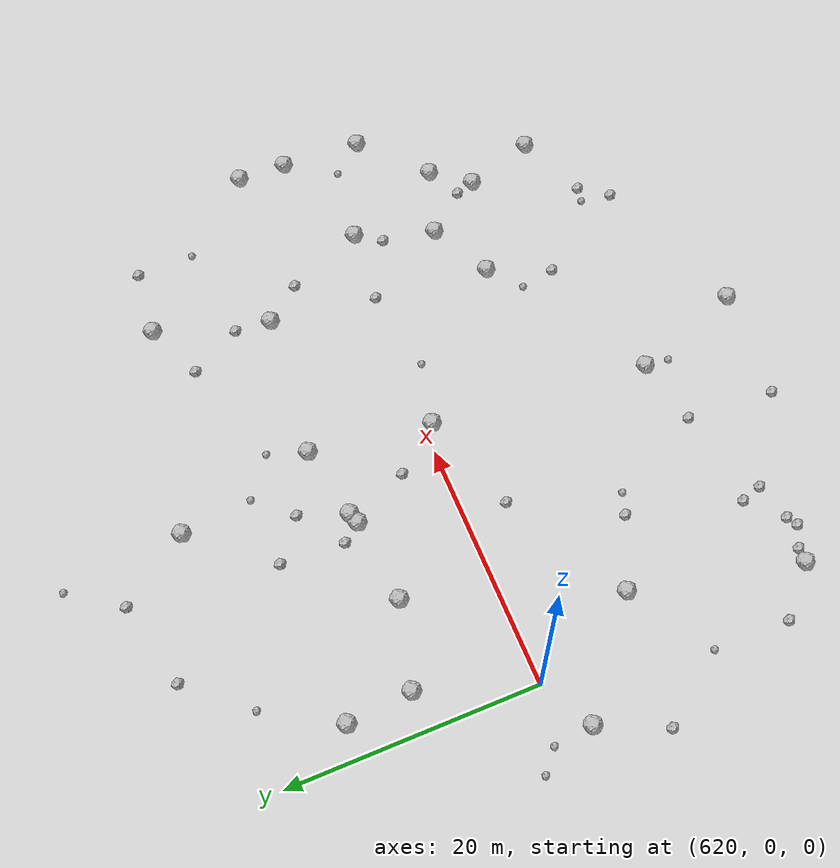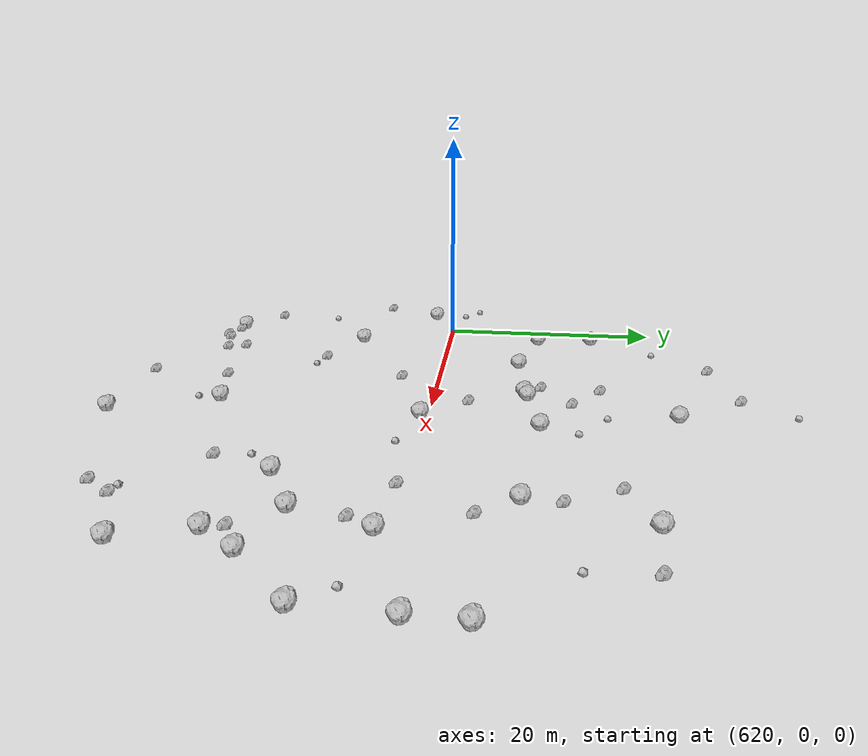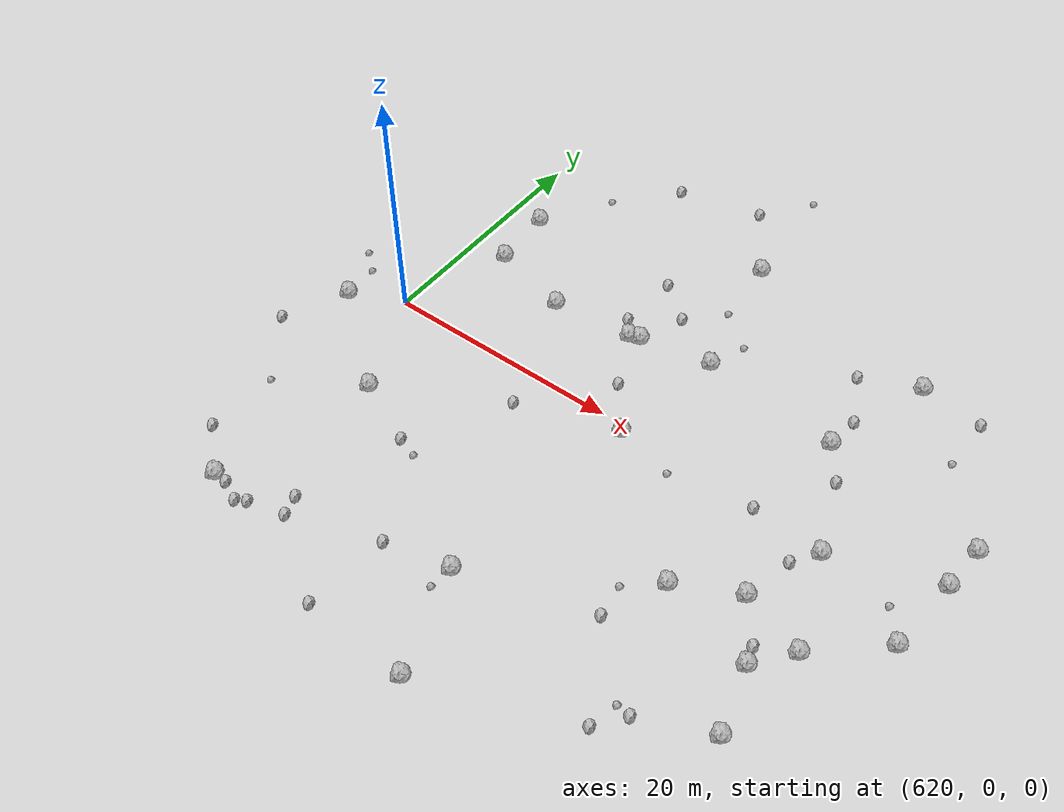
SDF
<sdf version="1.6">
 <world name="default">
  <include><uri>model://sun</uri></include>
  <model name="rock1_16_3">
   <include><uri>model://rock1</uri><pose>623.1364648667761 8.868870119604928 0.5 0 0 0</pose></include>
  </model>
  <model name="rock1_16_4">
   <include><uri>model://rock1</uri><pose>653.1607430633203 -9.998257468310662 0.5 0 0 0</pose></include>
  </model>
  <model name="rock1_16_5">
   <include><uri>model://rock1</uri><pose>655.4844730723232 7.752170232379193 0.5 0 0 0</pose></include>
  </model>
  <model name="rock1_16_6">
   <include><uri>model://rock1</uri><pose>620.887110810057 -22.011574316721973 0.5 0 0 0</pose></include>
  </model>
  <model name="rock1_16_7">
   <include><uri>model://rock1</uri><pose>663.5100605602838 -9.30149738313893 0.5 0 0 0</pose></include>
  </model>
  <model name="rock1_16_8">
   <include><uri>model://rock1</uri><pose>637.6869257002869 7.974745074536088 0.5 0 0 0</pose></include>
  </model>
  <model name="rock1_16_9">
   <include><uri>model://rock1</uri><pose>668.8802122784133 1.5959710025217575 0.5 0 0 0</pose></include>
  </model>
  <model name="rock1_16_10">
   <include><uri>model://rock1</uri><pose>643.3737983387027 -26.80811255486581 0.5 0 0 0</pose></include>
  </model>
  <model name="rock1_16_11">
   <include><uri>model://rock1</uri><pose>640.3454807122216 -18.10771555527479 0.5 0 0 0</pose></include>
  </model>
  <model name="rock1_16_12">
   <include><uri>model://rock1</uri><pose>641.0633335639395 20.22936420175033 0.5 0 0 0</pose></include>
  </model>
  <model name="rock1_16_13">
   <include><uri>model://rock1</uri><pose>661.2403832146983 -12.21386381640492 0.5 0 0 0</pose></include>
  </model>
  <model name="rock1_16_14">
   <include><uri>model://rock1</uri><pose>642.2457046935793 -0.6920732607810329 0.5 0 0 0</pose></include>
  </model>
  <model name="rock1_16_15">
   <include><uri>model://rock1</uri><pose>660.2926701946934 -1.3345683877439498 0.5 0 0 0</pose></include>
  </model>
  <model name="rock1_16_16">
   <include><uri>model://rock1</uri><pose>662.9056764620101 -17.734613702822024 0.5 0 0 0</pose></include>
  </model>
  <model name="rock1_16_17">
   <include><uri>model://rock1</uri><pose>669.0283452730822 5.472510108427429 0.5 0 0 0</pose></include>
  </model>
  <model name="rock1_16_18">
   <include><uri>model://rock1</uri><pose>658.1052052865219 -7.522040729087934 0.5 0 0 0</pose></include>
  </model>
  <model name="rock1_16_19">
   <include><uri>model://rock1</uri><pose>668.4967118377624 -4.778880422197847 0.5 0 0 0</pose></include>
  </model>
  <model name="rock1_16_20">
   <include><uri>model://rock1</uri><pose>658.2296598252348 16.71942146712552 0.5 0 0 0</pose></include>
  </model>
  <model name="rock1_16_21">
   <include><uri>model://rock1</uri><pose>643.678679067399 9.054250098260553 0.5 0 0 0</pose></include>
  </model>
  <model name="rock1_16_22">
   <include><uri>model://rock1</uri><pose>622.6987391453076 14.077202539816 0.5 0 0 0</pose></include>
  </model>
  <model name="rock1_16_23">
   <include><uri>model://rock1</uri><pose>615.781720908671 -2.1363731213845547 0.5 0 0 0</pose></include>
  </model>
  <model name="rock1_16_24">
   <include><uri>model://rock1</uri><pose>636.7836058731606 7.676815855418106 0.5 0 0 0</pose></include>
  </model>
  <model name="rock1_16_25">
   <include><uri>model://rock1</uri><pose>623.9877854639246 -8.720757104129401 0.5 0 0 0</pose></include>
  </model>
  <model name="rock1_16_26">
   <include><uri>model://rock1</uri><pose>629.9381833538798 7.076558386663287 0.5 0 0 0</pose></include>
  </model>
  <model name="rock2_16_0">
   <include><uri>model://rock2</uri><pose>639.1961391352072 3.048388527997659 0.3 0 0 0</pose></include>
  </model>
  <model name="rock2_16_1">
   <include><uri>model://rock2</uri><pose>637.1778744128683 25.896326152251163 0.3 0 0 0</pose></include>
  </model>
  <model name="rock2_16_2">
   <include><uri>model://rock2</uri><pose>630.1936433656331 24.294409025517062 0.3 0 0 0</pose></include>
  </model>
  <model name="rock2_16_3">
   <include><uri>model://rock2</uri><pose>634.9380324315742 -19.25219489658706 0.3 0 0 0</pose></include>
  </model>
  <model name="rock2_16_4">
   <include><uri>model://rock2</uri><pose>623.7817423034842 -22.905579839691956 0.3 0 0 0</pose></include>
  </model>
  <model name="rock2_16_5">
   <include><uri>model://rock2</uri><pose>635.932956809322 14.230219354549781 0.3 0 0 0</pose></include>
  </model>
  <model name="rock2_16_6">
   <include><uri>model://rock2</uri><pose>663.5402009724309 16.130001966857307 0.3 0 0 0</pose></include>
  </model>
  <model name="rock2_16_7">
   <include><uri>model://rock2</uri><pose>655.7068406969274 -22.29607281243201 0.3 0 0 0</pose></include>
  </model>
  <model name="rock2_16_8">
   <include><uri>model://rock2</uri><pose>624.6074848419815 -22.434784597007237 0.3 0 0 0</pose></include>
  </model>
  <model name="rock2_16_9">
   <include><uri>model://rock2</uri><pose>655.7373656846016 10.623003136884954 0.3 0 0 0</pose></include>
  </model>
  <model name="rock2_16_10">
   <include><uri>model://rock2</uri><pose>617.3069337334309 -18.81359415118182 0.3 0 0 0</pose></include>
  </model>
  <model name="rock2_16_11">
   <include><uri>model://rock2</uri><pose>629.5289850849668 -11.25211949261353 0.3 0 0 0</pose></include>
  </model>
  <model name="rock2_16_12">
   <include><uri>model://rock2</uri><pose>633.9573003843191 -3.351479759824553 0.3 0 0 0</pose></include>
  </model>
  <model name="rock2_16_13">
   <include><uri>model://rock2</uri><pose>654.2172076346802 -0.8001361753331864 0.3 0 0 0</pose></include>
  </model>
  <model name="rock2_16_14">
   <include><uri>model://rock2</uri><pose>627.1021017096863 -20.022376280404274 0.3 0 0 0</pose></include>
  </model>
  <model name="rock2_16_15">
   <include><uri>model://rock2</uri><pose>635.6428943586958 9.131851822090688 0.3 0 0 0</pose></include>
  </model>
  <model name="rock2_16_16">
   <include><uri>model://rock2</uri><pose>627.6470279231672 -21.686963964262002 0.3 0 0 0</pose></include>
  </model>
  <model name="rock2_16_17">
   <include><uri>model://rock2</uri><pose>622.0539657055767 -22.10337548666569 0.3 0 0 0</pose></include>
  </model>
  <model name="rock2_16_18">
   <include><uri>model://rock2</uri><pose>658.9241776797788 -3.3244395170995773 0.3 0 0 0</pose></include>
  </model>
  <model name="rock2_16_19">
   <include><uri>model://rock2</uri><pose>657.3403824920496 -20.08912253002233 0.3 0 0 0</pose></include>
  </model>
  <model name="rock2_16_20">
   <include><uri>model://rock2</uri><pose>651.0725939868736 -14.914184464110981 0.3 0 0 0</pose></include>
  </model>
  <model name="rock2_16_21">
   <include><uri>model://rock2</uri><pose>613.3801401102456 -7.356241885598273 0.3 0 0 0</pose></include>
  </model>
  <model name="rock2_16_22">
   <include><uri>model://rock2</uri><pose>657.7514329778312 4.825663725118616 0.3 0 0 0</pose></include>
  </model>
  <model name="rock2_16_23">
   <include><uri>model://rock2</uri><pose>660.7484993863372 -10.71672525315806 0.3 0 0 0</pose></include>
  </model>
  <model name="rock2_16_24">
   <include><uri>model://rock2</uri><pose>653.5532147304347 14.746034592741225 0.3 0 0 0</pose></include>
  </model>
  <model name="rock2_16_25">
   <include><uri>model://rock2</uri><pose>639.1069654276957 11.731302042297123 0.3 0 0 0</pose></include>
  </model>
  <model name="rock2_16_26">
   <include><uri>model://rock2</uri><pose>634.4363005440068 -26.259048753429145 0.3 0 0 0</pose></include>
  </model>
  <model name="rock3_16_0">
   <include><uri>model://rock3</uri><pose>615.4311510725627 0.9833103126338862 0.2 0 0 0</pose></include>
  </model>
  <model name="rock3_16_1">
   <include><uri>model://rock3</uri><pose>640.1286922381183 -20.098873531206994 0.2 0 0 0</pose></include>
  </model>
  <model name="rock3_16_2">
   <include><uri>model://rock3</uri><pose>626.0846371669793 19.708361255929496 0.2 0 0 0</pose></include>
  </model>
  <model name="rock3_16_3">
   <include><uri>model://rock3</uri><pose>656.116656978329 -19.916890646721384 0.2 0 0 0</pose></include>
  </model>
  <model name="rock3_16_4">
   <include><uri>model://rock3</uri><pose>650.5818645834128 -12.189480710066821 0.2 0 0 0</pose></include>
  </model>
  <model name="rock3_16_5">
   <include><uri>model://rock3</uri><pose>617.4129459423523 -12.788940212463423 0.2 0 0 0</pose></include>
  </model>
  <model name="rock3_16_6">
   <include><uri>model://rock3</uri><pose>647.3135874102218 -1.9515380042066646 0.2 0 0 0</pose></include>
  </model>
  <model name="rock3_16_7">
   <include><uri>model://rock3</uri><pose>640.017688506007 29.859386135360282 0.2 0 0 0</pose></include>
  </model>
  <model name="rock3_16_8">
   <include><uri>model://rock3</uri><pose>631.2578230130857 -11.882979892307919 0.2 0 0 0</pose></include>
  </model>
  <model name="rock3_16_9">
   <include><uri>model://rock3</uri><pose>641.6330444134163 14.478009175784742 0.2 0 0 0</pose></include>
  </model>
  <model name="rock3_16_10">
   <include><uri>model://rock3</uri><pose>663.605141439759 11.522531776783055 0.2 0 0 0</pose></include>
  </model>
  <model name="rock3_16_11">
   <include><uri>model://rock3</uri><pose>644.7362713805574 12.072245380172085 0.2 0 0 0</pose></include>
  </model>
  <model name="rock3_16_12">
   <include><uri>model://rock3</uri><pose>613.7611401962582 2.4172849397736726 0.2 0 0 0</pose></include>
  </model>
  <model name="rock3_16_13">
   <include><uri>model://rock3</uri><pose>666.3827969342899 -2.3108046199809813 0.2 0 0 0</pose></include>
  </model>
 </world>
</sdf>
